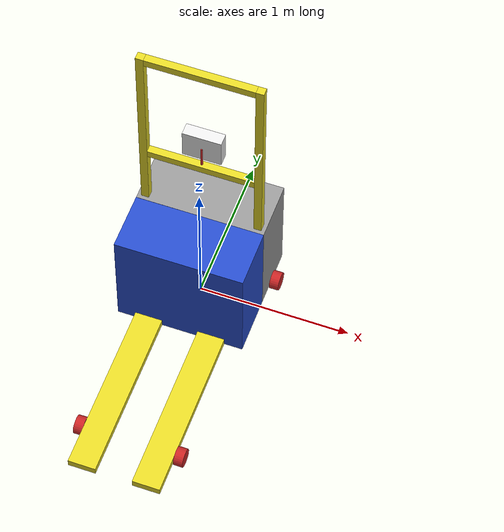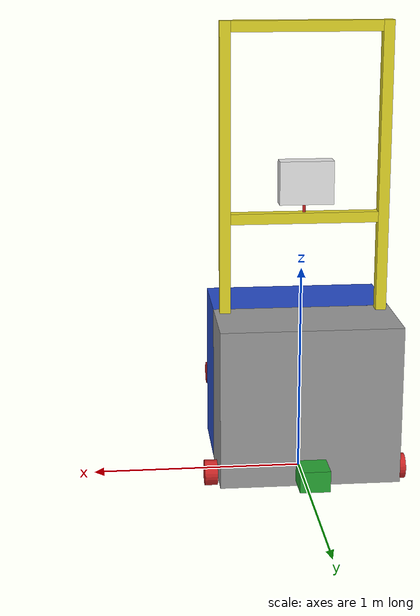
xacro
<?xml version="1.0" ?>

<robot xmlns:xacro="http://www.ros.org/wiki/xacro">

<!-- PROPERTIES -->
    <xacro:property name="base_length" value="0.84" />
    <xacro:property name="base_width" value="0.38" />
    <xacro:property name="base_height" value="0.75" />

    <xacro:property name="battery_box_length" value="0.84" />
    <xacro:property name="battery_box_width" value="0.38" />
    <xacro:property name="battery_box_height" value="0.75" />

    <xacro:property name="right_fork_length" value="1.15" />
    <xacro:property name="right_fork_width" value="0.18" />
    <xacro:property name="right_fork_height" value="0.05" />

    <xacro:property name="left_fork_length" value="1.15" />
    <xacro:property name="left_fork_width" value="0.18" />
    <xacro:property name="left_fork_height" value="0.05" />

    <xacro:property name="right_corner_rod_length" value="0.05" />
    <xacro:property name="right_corner_rod_width" value="0.05" />
    <xacro:property name="right_corner_rod_height" value="1.35" />

    <xacro:property name="left_corner_rod_length" value="0.05" />
    <xacro:property name="left_corner_rod_width" value="0.05" />
    <xacro:property name="left_corner_rod_height" value="1.35" />

    <xacro:property name="middle_rod_length" value="0.05" />
    <xacro:property name="middle_rod_width" value="0.05" />
    <xacro:property name="middle_rod_height" value="0" />

    <xacro:property name="top_rod_length" value="0.05" />
    <xacro:property name="top_rod_width" value="0.05" />
    <xacro:property name="top_rod_height" value="0" />

    <xacro:property name="hmi_length" value="0.25" />
    <xacro:property name="hmi_width" value="0.20" />
    <xacro:property name="hmi_height" value="0.08" />

    <xacro:property name="collision_sensor_length" value="0.14" />
    <xacro:property name="collision_sensor_width" value="0.14" />
    <xacro:property name="collision_sensor_height" value="0.10" />

    <xacro:property name="connecting_cylinder_radius" value="0.007" />
    <xacro:property name="connecting_cylinder_length" value="0.15" />

    <xacro:property name="wheel_radius" value="0.06" />
    <xacro:property name="wheel_length" value="0.06" />

<!-- LINKS -->
    <link name="base_footprint" />

    <link name="base_link">
        <visual>
            <geometry>
                <box size="${base_length} ${base_width} ${base_height}" />
            </geometry>
            <origin xyz="0 ${base_width / 2} ${base_height / 2}"  rpy="0 0 0"/>
            <material name="grey" />
        </visual>
    </link>

    <link name="battery_box_link">
        <visual>
            <geometry>
                <box size="${battery_box_length} ${battery_box_width} ${battery_box_height}" />
            </geometry>
            <origin xyz="0 ${battery_box_width / 2} ${battery_box_height / 2}" rpy="0 0 0" />
            <material name="blue" />
        </visual>
    </link>
    <link name="collision_sensor_link">
        <visual>
            <geometry>
                <box size="${collision_sensor_length} ${collision_sensor_width} ${collision_sensor_height}" />
            </geometry>
            <origin xyz="0 ${collision_sensor_width / 2} 0"  rpy="0 0 0"/>
            <material name="green" />
        </visual>
    </link>

    <link name="right_fork_link">
        <visual>
            <geometry>
                <box size="${right_fork_length} ${right_fork_width} ${right_fork_height}" />
            </geometry>
            <origin xyz="0 ${right_fork_length / 2} ${right_fork_height / 2}"  rpy="0 0 ${pi / 2}"/>
            <material name="yellow" />
        </visual>
    </link>

    <link name="left_fork_link">
        <visual>
            <geometry>
                <box size="${left_fork_length} ${left_fork_width} ${left_fork_height}" />
            </geometry>
            <origin xyz="0 ${left_fork_length / 2} ${left_fork_height / 2}"  rpy="0 0 ${pi / 2}"/>
            <material name="yellow" />
        </visual>
    </link>

    <link name="right_corner_rod_link">
        <visual>
            <geometry>
                <box size="${right_corner_rod_length} ${right_corner_rod_width} ${right_corner_rod_height}" />
            </geometry>
            <origin xyz="0 0 ${right_corner_rod_height / 2}"  rpy="0 0 0"/>
            <material name="yellow" />
        </visual>
    </link>

    <link name="left_corner_rod_link">
        <visual>
            <geometry>
                <box size="${left_corner_rod_length} ${left_corner_rod_width} ${left_corner_rod_height}" />
            </geometry>
            <origin xyz="0 0 ${left_corner_rod_height / 2}"  rpy="0 0 0"/>
            <material name="yellow" />
        </visual>
    </link>

    <link name="middle_rod_link">
        <visual>
            <geometry>
                <box size="${middle_rod_length} ${middle_rod_width} ${(base_length) - (3 * right_corner_rod_length)}" />
            </geometry>
            <origin xyz="0 0 0"  rpy="0 ${pi / 2} 0"/>
            <material name="yellow" />
        </visual>
    </link>

    <link name="connecting_cylinder_link">
        <visual>
            <geometry>
                <cylinder radius="${connecting_cylinder_radius}" length="${connecting_cylinder_length}" />
            </geometry>
            <origin xyz="0 0 ${connecting_cylinder_length / 2}"  rpy="0 0 0"/>
            <material name="red" />
        </visual>
    </link>

    <link name="hmi_link">
        <visual>
            <geometry>
                <box size="${hmi_length} ${hmi_width} ${hmi_height}" />
            </geometry>
            <origin xyz="0 ${hmi_height / 2} 0"  rpy="${pi / 2} 0 0"/>
            <material name="offwhite" />
        </visual>
    </link>

    <link name="top_rod_link">
        <visual>
            <geometry>
                <box size="${top_rod_length} ${top_rod_width} ${(base_length) - (3 * right_corner_rod_length)}" />
            </geometry>
            <origin xyz="0 0 0"  rpy="0 ${pi / 2} 0"/>
            <material name="yellow" />
        </visual>
    </link>

    <link name="right_rear_wheel_link">
        <visual>
            <geometry>
                <cylinder radius="${wheel_radius}" length="${wheel_length}" />
            </geometry>
            <origin xyz="${-(wheel_length / 2)} 0 0"  rpy="0 ${pi / 2} 0"/>
            <material name="red" />
        </visual>
    </link>

    <link name="left_rear_wheel_link">
        <visual>
            <geometry>
                <cylinder radius="${wheel_radius}" length="${wheel_length}" />
            </geometry>
            <origin xyz="${wheel_length / 2} 0 0"  rpy="0 ${pi / 2} 0"/>
            <material name="red" />
        </visual>
    </link>

    <link name="right_front_wheel_link">
        <visual>
            <geometry>
                <cylinder radius="${wheel_radius}" length="${wheel_length}" />
            </geometry>
            <origin xyz="${-(wheel_length / 2)} 0 0"  rpy="0 ${pi / 2} 0"/>
            <material name="red" />
        </visual>
    </link>red

    <link name="left_front_wheel_link">
        <visual>
            <geometry>
                <cylinder radius="${wheel_radius}" length="${wheel_length}" />
            </geometry>
            <origin xyz="${wheel_length / 2} 0 0"  rpy="0 ${pi / 2} 0"/>
            <material name="red" />
        </visual>
    </link>

<!-- JOINTS -->
    <joint name="base_footprint_base_link_joint" type="fixed">
        <parent link="base_footprint" />
        <child link="base_link" />
        <origin xyz="0 0 ${wheel_radius}" rpy="0 0 0" />
    </joint>

    <joint name="base_battery_box_joint" type="prismatic">
        <parent link="base_link" />
        <child link="battery_box_link" />
        <origin xyz="0 0 0" rpy="0 0 -3.14" />
        <axis xyz="0 0 1" />
        <limit lower="0" upper="0.1" velocity="100" effort="100" />
    </joint>

    <joint name="base_collision_sensor_box_joint" type="fixed">
        <parent link="base_link" />
        <child link="collision_sensor_link" />
        <origin xyz="0 0${base_width} ${collision_sensor_height - (collision_sensor_height / 4)}" rpy="0 0 0" />
    </joint>

    <joint name="battery_box_right_fork_joint" type="fixed">
        <parent link="battery_box_link" />
        <child link="right_fork_link" />
        <origin xyz="${battery_box_length / 4} ${battery_box_width} 0" rpy="0 0 0" />
    </joint>

    <joint name="battery_box_left_fork_joint" type="fixed">
        <parent link="battery_box_link" />
        <child link="left_fork_link" />
        <origin xyz="${-(battery_box_length / 4)} ${battery_box_width} 0" rpy="0 0 0" />
    </joint>

    <joint name="base_right_corner_rod_joint" type="fixed">
        <parent link="base_link" />
        <child link="right_corner_rod_link" />
        <origin xyz="${-(base_length / 2) +
        (right_corner_rod_length)} ${(right_corner_rod_width)} ${base_height}" rpy="0 0 0" />
    </joint>

    <joint name="base_left_corner_rod_joint" type="fixed">
        <parent link="base_link" />
        <child link="left_corner_rod_link" />
        <origin xyz="${(base_length / 2) - (left_corner_rod_length)} ${left_corner_rod_width} ${base_height}" rpy="0 0 0" />
    </joint>

    <joint name="right_corner_rod_top_rod_joint" type="fixed">
        <parent link="right_corner_rod_link" />
        <child link="top_rod_link" />
        <origin xyz="${((base_length) - (2 * right_corner_rod_length)) / 2} 0 ${(right_corner_rod_height) - (top_rod_width / 2)}" rpy="0 0 0" />
    </joint>

    <joint name="right_corner_rod_middle_rod_joint" type="fixed">
        <parent link="right_corner_rod_link" />
        <child link="middle_rod_link" />
        <origin xyz="${((base_length) - (2 * right_corner_rod_length)) / 2} 0 ${right_corner_rod_height / 3}" rpy="0 0 0" />
    </joint>

    <joint name="middle_rod_connecting_cylinder_joint" type="revolute">
        <parent link="middle_rod_link" />
        <child link="connecting_cylinder_link" />
        <origin xyz="0 0 ${middle_rod_length / 2}" rpy="0 0 0" />
        <axis xyz="0 0 1" />
        <limit lower="${- (pi)}" upper="${pi}" velocity="100" effort="100" />
    </joint>

    <joint name="connecting_cylinder_hmi_joint" type="fixed">
        <parent link="connecting_cylinder_link" />
        <child link="hmi_link" />
        <origin xyz="0 0 ${connecting_cylinder_length}" rpy="0 0 0" />
    </joint>

    <joint name="base_right_rear_wheel_joint" type="continuous">
        <parent link="base_link" />
        <child link="right_rear_wheel_link" />
        <origin xyz="${-(base_length / 2)} ${base_width / 2} 0" rpy="0 0 0" />
        <axis xyz="1 0 0" />
    </joint>

    <joint name="base_left_rear_wheel_joint" type="continuous">
        <parent link="base_link" />
        <child link="left_rear_wheel_link" />
        <origin xyz="${(base_length / 2)} ${base_width / 2} 0" rpy="0 0 0" />
        <axis xyz="1 0 0" />
    </joint>

    <joint name="base_right_front_wheel_joint" type="continuous">
        <parent link="right_fork_link" />
        <child link="right_front_wheel_link" />
        <origin xyz="${right_fork_width / 2} ${right_fork_length * (3 / 4)} 0" rpy="0 0 ${pi}" />
        <axis xyz="1 0 0" />
    </joint>

    <joint name="base_left_front_wheel_joint" type="continuous">
        <parent link="left_fork_link" />
        <child link="left_front_wheel_link" />
        <origin xyz="${-(left_fork_width / 2)} ${left_fork_length * (3 / 4)} 0" rpy="0 0 ${pi}" />
        <axis xyz="1 0 0" />
    </joint>

</robot>
